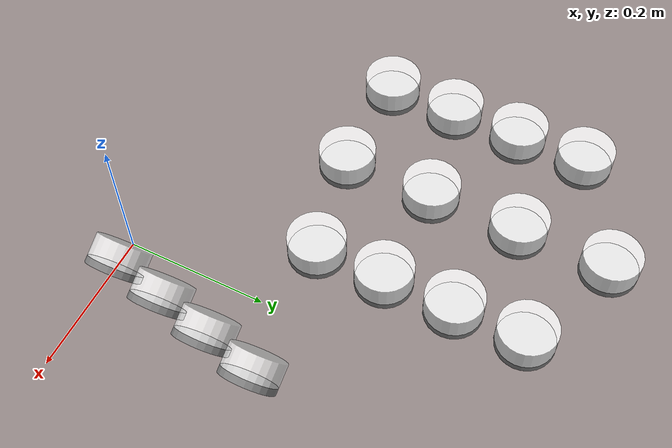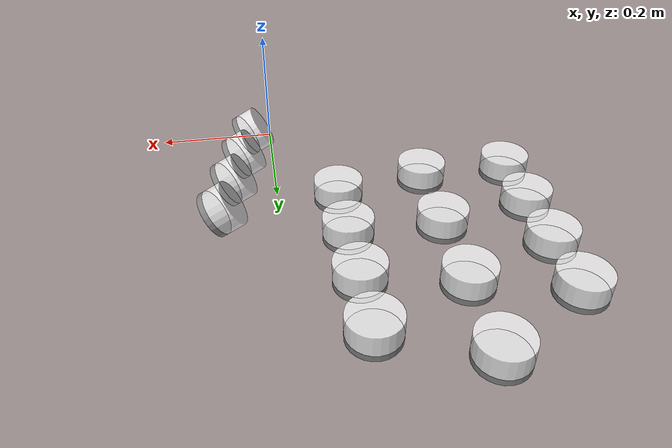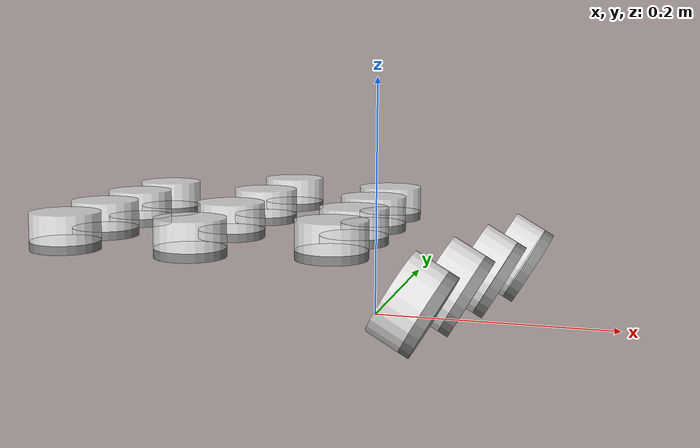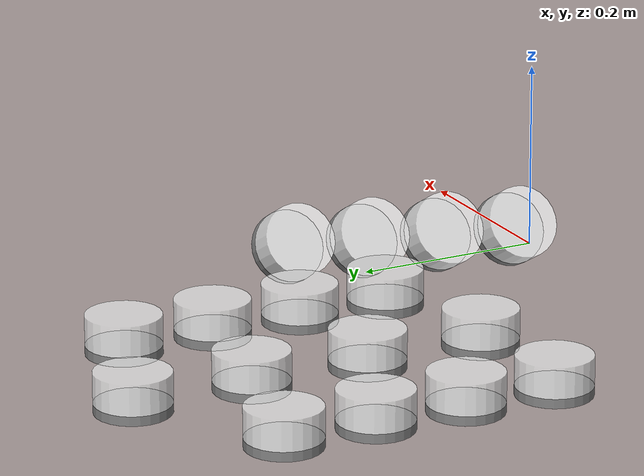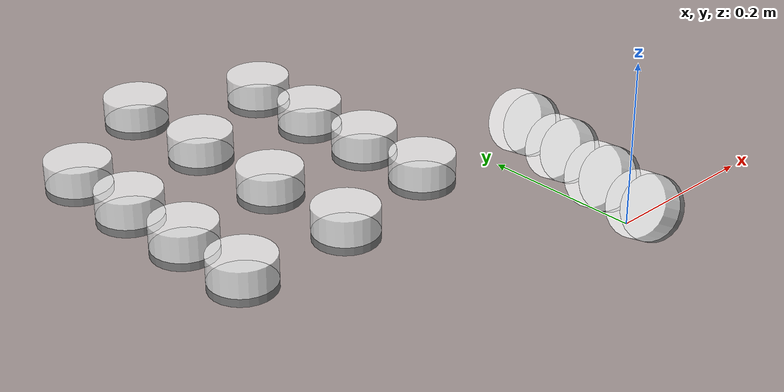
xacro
<?xml version="1.0" ?>

<!-- Dummy file just to view a kind of a hand! -->

<robot xmlns:xacro="http://www.ros.org/wiki/xacro" name="WEF-6A200">
  <xacro:arg name="sensor_frame_id" default="tactile_right"/>
  <xacro:include filename="$(find vizzy_tactile)/urdf/draft_tactile_macro.xacro"/>

  <link name="world"/>

<!-- Polegar -->
  <xacro:dynpick prefix="right_1" parent="world" sensor_frame_id="$(arg sensor_frame_id)_1">
    <origin xyz="0.11 0.24 0" rpy="0 -1.046 0" />
  </xacro:dynpick>
  <xacro:dynpick prefix="right_2" parent="world" sensor_frame_id="$(arg sensor_frame_id)_2">
    <origin xyz="0.09 0.16 0" rpy="0 -1.046 0" />
  </xacro:dynpick>
  <xacro:dynpick prefix="right_3" parent="world" sensor_frame_id="$(arg sensor_frame_id)_3">
    <origin xyz="0.07 0.08 0" rpy="0 -1.046 0" />
  </xacro:dynpick>
  <xacro:dynpick prefix="right_4" parent="world" sensor_frame_id="$(arg sensor_frame_id)_4">
    <origin xyz="0.05 0.0 0" rpy="0 -1.046 0" />
  </xacro:dynpick>

<!-- Indicador -->

<xacro:dynpick prefix="right_5" parent="world" sensor_frame_id="$(arg sensor_frame_id)_5">
  <origin xyz="-0.1 0.53 0" rpy="0 0 0" />
</xacro:dynpick>
<xacro:dynpick prefix="right_6" parent="world" sensor_frame_id="$(arg sensor_frame_id)_6">
  <origin xyz="-0.1 0.43 0" rpy="0 0 0" />
</xacro:dynpick>
<xacro:dynpick prefix="right_7" parent="world" sensor_frame_id="$(arg sensor_frame_id)_7">
  <origin xyz="-0.1 0.33 0" rpy="0 0 0" />
</xacro:dynpick>
<xacro:dynpick prefix="right_8" parent="world" sensor_frame_id="$(arg sensor_frame_id)_8">
  <origin xyz="-0.1 0.23 0" rpy="0 0 0" />
</xacro:dynpick>

<!-- Medio -->

<xacro:dynpick prefix="right_9" parent="world" sensor_frame_id="$(arg sensor_frame_id)_9">
  <origin xyz="-0.25 0.59 0" rpy="0 0 0" />
</xacro:dynpick>
<xacro:dynpick prefix="right_10" parent="world" sensor_frame_id="$(arg sensor_frame_id)_10">
  <origin xyz="-0.25 0.46 0" rpy="0 0 0" />
</xacro:dynpick>
<xacro:dynpick prefix="right_11" parent="world" sensor_frame_id="$(arg sensor_frame_id)_11">
  <origin xyz="-0.25 0.33 0" rpy="0 0 0" />
</xacro:dynpick>
<xacro:dynpick prefix="right_12" parent="world" sensor_frame_id="$(arg sensor_frame_id)_12">
  <origin xyz="-0.25 0.20 0" rpy="0 0 0" />
</xacro:dynpick>

<!-- Anelar -->

<xacro:dynpick prefix="right_13" parent="world" sensor_frame_id="$(arg sensor_frame_id)_13">
  <origin xyz="-0.4 0.50 0" rpy="0 0 0" />
</xacro:dynpick>
<xacro:dynpick prefix="right_14" parent="world" sensor_frame_id="$(arg sensor_frame_id)_14">
  <origin xyz="-0.4 0.40 0" rpy="0 0 0" />
</xacro:dynpick>
<xacro:dynpick prefix="right_15" parent="world" sensor_frame_id="$(arg sensor_frame_id)_15">
  <origin xyz="-0.4 0.30 0" rpy="0 0 0" />
</xacro:dynpick>
<xacro:dynpick prefix="right_16" parent="world" sensor_frame_id="$(arg sensor_frame_id)_16">
  <origin xyz="-0.4 0.20 0" rpy="0 0 0" />
</xacro:dynpick>

</robot>

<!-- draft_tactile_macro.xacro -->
<robot xmlns:xacro="http://www.ros.org/wiki/xacro" name="draft_tactile" >

  <xacro:macro name="dynpick" params="parent prefix sensor_frame_id *origin">

    <joint name="${prefix}mount" type="fixed" >
      <insert_block name="origin" />
      <parent link="${parent}" />
      <child link="${prefix}fts_upper" />
    </joint>

    <link name="${prefix}fts_upper">
     <visual>
       <origin xyz="0 0 0.005" rpy="0 0 0"/>
       <geometry>
          <cylinder radius="0.04" length="0.01"/>
       </geometry>
       <material name="Gray">
        <color rgba="0.5 0.5 0.5 1"/>
       </material>
     </visual>
    </link>

    <joint name="${prefix}fts" type="fixed" >
     <origin xyz="0 0 0.01" rpy="0 0 0" />
     <parent link="${prefix}fts_upper" />
     <child link="${prefix}fts_body" />
    </joint>

    <!--link name="${prefix}fts_body"/-->
    <link name="${prefix}fts_body">
      <visual>
        <origin xyz="0 0 ${0.0325/2}" rpy="0 0 0"/>
        <geometry>
          <cylinder radius="0.04" length="0.0325"/>
        </geometry>
        <material name="Transparent white">
          <color rgba="1 1 1 0.8"/>
        </material>
      </visual>
    </link>

    <joint name="${prefix}fts_measurement" type="fixed" >
      <origin xyz="0 0 ${0.0325/2}" rpy="0 0 0" />
      <parent link="${prefix}fts_body" />
      <child link="${prefix}${sensor_frame_id}" />
    </joint>

     <!--link where the measurement comes from-->
    <link name="${prefix}${sensor_frame_id}"/>

    <joint name="${prefix}lower" type="fixed" >
     <origin xyz="0 0 0.0325" rpy="0 0 0" />
     <parent link="${prefix}fts_body" />
     <child link="${prefix}fts_tool_mount" />
    </joint>

    <link name="${prefix}fts_tool_mount"/>

  </xacro:macro>

</robot>
